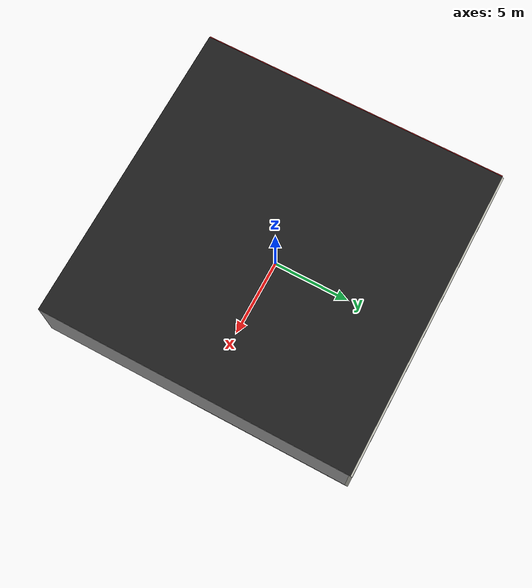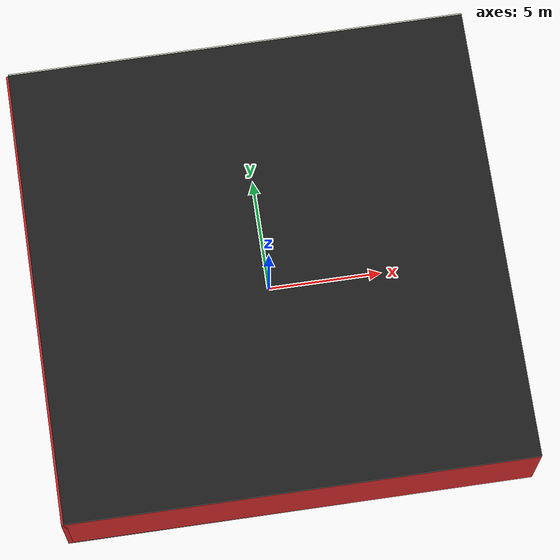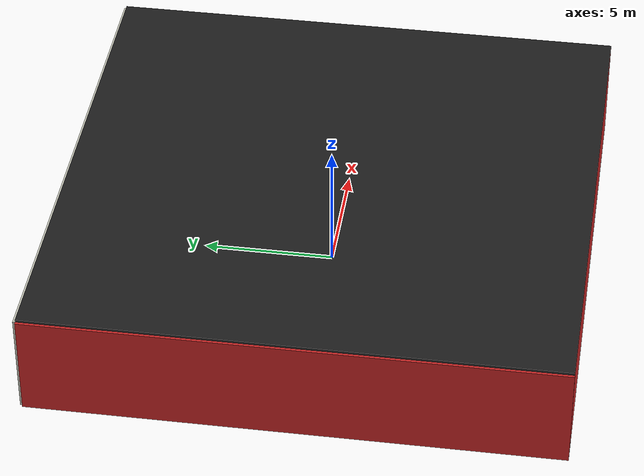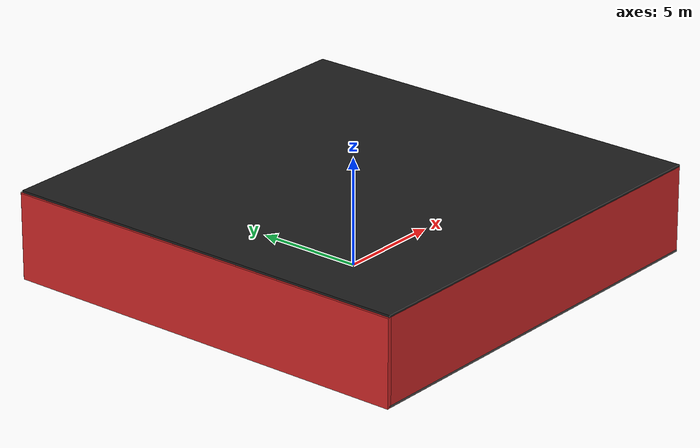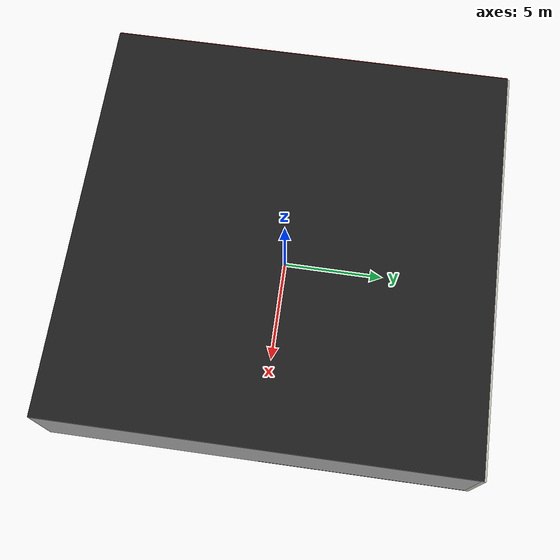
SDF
<sdf version="1.4">
 <world name="default">
  <physics type="ode">
   <max_step_size>0.001</max_step_size>
   <real_time_factor>1</real_time_factor>
   <real_time_update_rate>1000</real_time_update_rate>
   <gravity>0 0 -9.8</gravity>
  </physics>
  <scene><ambient>0.4 0.4 0.4 1</ambient><background>0.7 0.7 0.7 1</background><shadows>1</shadows></scene>
  <model name="Surrounding">
   <static>1</static>
   <link name="Ceiling">
    <collision name="Ceiling_Collision"><geometry><box><size>20 20 0.1</size></box></geometry></collision>
    <visual name="Ceiling_Visual">
     <geometry><box><size>20 20 0.1</size></box></geometry>
     <material>
      <script><uri>file://media/materials/scripts/gazebo.material</uri><name>Gazebo/Black</name></script>
     </material>
    </visual>
    <pose>0 0 4.05 0 0 0</pose>
   </link>
   <link name="Wall_South">
    <collision name="Wall_South_Collision">
     <geometry><box><size>20 0 4</size></box></geometry>
     <pose>0 0 2 0 -0 0</pose>
    </collision>
    <visual name="Wall_South_Visual">
     <pose>0 0 2 0 -0 0</pose>
     <geometry><box><size>20 0 4</size></box></geometry>
     <material>
      <script><uri>file://media/materials/scripts/gazebo.material</uri><name>Gazebo/RedBright</name></script>
     </material>
    </visual>
    <velocity_decay><linear>0</linear><angular>0</angular></velocity_decay>
    <pose>0 -10 0 0 -0 0</pose>
   </link>
   <link name="Wall_East">
    <collision name="Wall_21_Collision">
     <geometry><box><size>20 0 4</size></box></geometry>
     <pose>0 0 2 0 -0 0</pose>
    </collision>
    <visual name="Wall_21_Visual">
     <pose>0 0 2 0 -0 0</pose>
     <geometry><box><size>20 0 4</size></box></geometry>
     <material>
      <script><uri>file://media/materials/scripts/gazebo.material</uri><name>Gazebo/LightOn</name></script>
     </material>
    </visual>
    <velocity_decay><linear>0</linear><angular>0</angular></velocity_decay>
    <pose>10 0 0 0 -0 1.5708</pose>
   </link>
   <link name="Wall_North">
    <collision name="Wall_22_Collision">
     <geometry><box><size>20 0.2 4</size></box></geometry>
     <pose>0 0 2 0 -0 0</pose>
    </collision>
    <visual name="Wall_22_Visual">
     <pose>0 0 2 0 -0 0</pose>
     <geometry><box><size>20 0.2 4</size></box></geometry>
     <material>
      <script><uri>file://media/materials/scripts/gazebo.material</uri><name>Gazebo/PaintedWall</name></script>
     </material>
    </visual>
    <velocity_decay><linear>0</linear><angular>0</angular></velocity_decay>
    <pose>0 10 0 0 -0 0</pose>
   </link>
   <link name="Wall_West">
    <collision name="Wall_23_Collision">
     <geometry><box><size>20 0.2 4</size></box></geometry>
     <pose>0 0 2 0 -0 0</pose>
    </collision>
    <visual name="Wall_23_Visual">
     <pose>0 0 2 0 -0 0</pose>
     <geometry><box><size>20 0.2 4</size></box></geometry>
     <material>
      <script><uri>file://media/materials/scripts/gazebo.material</uri><name>Gazebo/Red</name></script>
     </material>
    </visual>
    <velocity_decay><linear>0</linear><angular>0</angular></velocity_decay>
    <pose>-10 0 0 0 0 -1.5708</pose>
   </link>
   <link name="Ground_link">
    <collision name="collision">
     <pose>0 0 .05 0 -0 0</pose>
     <geometry><box><size>20 20 0.1</size></box></geometry>
    </collision>
    <visual name="visual">
     <pose>0 0 .05 0 -0 0</pose>
     <geometry><box><size>20 20 0.1</size></box></geometry>
     <material>
      <script><uri>file://media/materials/scripts/gazebo.material</uri><name>Gazebo/Road</name></script>
     </material>
    </visual>
   </link>
   <static>1</static>
  </model>
  <spherical_coordinates>
   <surface_model>EARTH_WGS84</surface_model>
   <latitude_deg>0</latitude_deg>
   <longitude_deg>0</longitude_deg>
   <elevation>0</elevation>
   <heading_deg>0</heading_deg>
  </spherical_coordinates>
  <light name="lightball_0" type="diffuse">
   <diffuse>0.8 0.8 0.8 1</diffuse>
   <specular>0.2 0.2 0.2 1</specular>
   <attenuation>
    <range>100</range>
    <constant>0.7</constant>
    <linear>0.01</linear>
    <quadratic>0.001</quadratic>
   </attenuation>
   <direction>-0.5 0.1 -0.9</direction>
   <pose>-1.15409756653 1.33257918718 2.29281431822 0 0 0</pose>
  </light>
  <light name="lightball_1" type="diffuse">
   <diffuse>0.8 0.8 0.8 1</diffuse>
   <specular>0.2 0.2 0.2 1</specular>
   <attenuation>
    <range>100</range>
    <constant>0.7</constant>
    <linear>0.01</linear>
    <quadratic>0.001</quadratic>
   </attenuation>
   <direction>-0.5 0.1 -0.9</direction>
   <pose>1.64387640137 -0.578792553421 2.18130101334 0 0 0</pose>
  </light>
  <light name="lightball_2" type="diffuse">
   <diffuse>0.8 0.8 0.8 1</diffuse>
   <specular>0.2 0.2 0.2 1</specular>
   <attenuation>
    <range>100</range>
    <constant>0.7</constant>
    <linear>0.01</linear>
    <quadratic>0.001</quadratic>
   </attenuation>
   <direction>-0.5 0.1 -0.9</direction>
   <pose>3.54568174408 -3.34585588331 1.15770624007 0 0 0</pose>
  </light>
  <light name="lightball_3" type="diffuse">
   <diffuse>0.8 0.8 0.8 1</diffuse>
   <specular>0.2 0.2 0.2 1</specular>
   <attenuation>
    <range>100</range>
    <constant>0.7</constant>
    <linear>0.01</linear>
    <quadratic>0.001</quadratic>
   </attenuation>
   <direction>-0.5 0.1 -0.9</direction>
   <pose>6.84877528357 2.65977031309 2.63349429053 0 0 0</pose>
  </light>
  <light name="lightball_4" type="diffuse">
   <diffuse>0.8 0.8 0.8 1</diffuse>
   <specular>0.2 0.2 0.2 1</specular>
   <attenuation>
    <range>100</range>
    <constant>0.7</constant>
    <linear>0.01</linear>
    <quadratic>0.001</quadratic>
   </attenuation>
   <direction>-0.5 0.1 -0.9</direction>
   <pose>-0.227288917604 -5.62928057924 0.885772410443 0 0 0</pose>
  </light>
  <light name="lightball_5" type="diffuse">
   <diffuse>0.8 0.8 0.8 1</diffuse>
   <specular>0.2 0.2 0.2 1</specular>
   <attenuation>
    <range>100</range>
    <constant>0.7</constant>
    <linear>0.01</linear>
    <quadratic>0.001</quadratic>
   </attenuation>
   <direction>-0.5 0.1 -0.9</direction>
   <pose>-0.872571511108 -9.99182033461 1.38177422953 0 0 0</pose>
  </light>
  <include>
   <uri>model://textured_shapes</uri>
   <pose>-6.41809583041 1.53538611937 0 0 0 1.76560806522</pose>
  </include>
  <include><uri>model://cabinet</uri><pose>-2.04302847341 -7.14206090258 0 0 0 0.0652319764091</pose></include>
  <include><uri>model://table</uri><pose>0.347843833786 6.75558118268 0 0 0 1.17315607523</pose></include>
  <include>
   <uri>model://robocup_3Dsim_goal</uri>
   <pose>4.67666669025 4.97477638544 0 0 0 2.57593085989</pose>
  </include>
  <include><uri>model://cabinet</uri><pose>7.22788855192 -0.514548489038 0 0 0 0.725758928308</pose></include>
  <include>
   <uri>model://textured_shapes</uri>
   <pose>7.21611001493 0.970907239805 0 0 0 1.96622891133</pose>
  </include>
 </world>
</sdf>

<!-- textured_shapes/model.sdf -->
<sdf version="1.6">
  <model name="textured_shapes">
    <pose>0 0 0.5 0 0 0</pose>
    <link name="box">
      <pose>0 -1.5 0 0 0 0</pose>
      <collision name="collision">
        <geometry>
          <box>
            <size>1 1 1</size>
          </box>
        </geometry>
      </collision>
      <visual name="visual">
        <geometry>
          <box>
            <size>1 1 1</size>
          </box>
        </geometry>
        <material>
          <script>
            <uri>model://../model_source/models/textured_shapes/materials/scripts</uri>
            <uri>model://../model_source/models/textured_shapes/materials/textures</uri>
            <name>TexturedShape/Squares</name>
          </script>
        </material>
      </visual>
    </link>
    <link name="sphere">
      <collision name="collision">
        <geometry>
          <sphere>
            <radius>0.5</radius>
          </sphere>
        </geometry>
      </collision>
      <visual name="visual">
        <geometry>
          <sphere>
            <radius>0.5</radius>
          </sphere>
        </geometry>
        <material>
          <script>
            <uri>model://../model_source/models/textured_shapes/materials/scripts</uri>
            <uri>model://../model_source/models/textured_shapes/materials/textures</uri>
            <name>TexturedShape/Squares</name>
          </script>
        </material>
      </visual>
    </link>
    <link name="cylinder">
      <pose>0 1.5 0 0 0 0</pose>
      <collision name="collision">
        <geometry>
          <cylinder>
            <radius>0.5</radius>
            <length>1</length>
          </cylinder>
        </geometry>
      </collision>
      <visual name="visual">
        <geometry>
          <cylinder>
            <radius>0.5</radius>
            <length>1</length>
          </cylinder>
        </geometry>
        <material>
          <script>
            <uri>model://../model_source/models/textured_shapes/materials/scripts</uri>
            <uri>model://../model_source/models/textured_shapes/materials/textures</uri>
            <name>TexturedShape/Squares</name>
          </script>
        </material>
      </visual>
    </link>
  </model>
</sdf>

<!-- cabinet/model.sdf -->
<sdf version="1.5">
  <model name="cabinet">
    <static>true</static>
    <link name="cabinet_bottom_plate">
      <inertial>
        <pose>0 0 -1 0 0 0</pose>
        <inertia>
          <ixx>2.050000</ixx>
          <ixy>0</ixy>
          <ixz>0</ixz>
          <iyy>2.050000</iyy>
          <iyz>0</iyz>
          <izz>2.050000</izz>
        </inertia>
        <mass>25.000000</mass>
      </inertial>
      <collision name="cabinet_bottom_plate_geom">
        <pose>0 0 0.010000 0 0 0</pose>
        <geometry>
          <box>
            <size>0.450000 0.450000 0.020000</size>
          </box>
        </geometry>
      </collision>
      <visual name="cabinet_bottom_plate_geom_visual">
        <pose>0 0 0.010000 0 0 0</pose>
        <geometry>
          <box>
            <size>0.450000 0.450000 0.020000</size>
          </box>
        </geometry>
        <material>
          <script>
            <uri>model://media/materials/scripts/gazebo.material</uri>
            <name>Gazebo/Wood</name>
          </script>
        </material>
      </visual>
      <collision name="cabinet_bottom_plate_geom_cabinet_back_plate">
        <pose>0.235000 0 0.510000 0 0 0</pose>
        <geometry>
          <box>
            <size>0.020000 0.450000 1.020000</size>
          </box>
        </geometry>
      </collision>
      <visual name="cabinet_bottom_plate_geom_cabinet_back_plate_visual">
        <pose>0.235000 0 0.510000 0 0 0</pose>
        <geometry>
          <box>
            <size>0.020000 0.450000 1.020000</size>
          </box>
        </geometry>
        <material>
          <script>
            <uri>model://media/materials/scripts/gazebo.material</uri>
            <name>Gazebo/Wood</name>
          </script>
        </material>
      </visual>
      <collision name="cabinet_bottom_plate_geom_cabinet_left_plate">
        <pose>0 0.235000 0.510000 0 0 0</pose>
        <geometry>
          <box>
            <size>0.450000 0.020000 1.020000</size>
          </box>
        </geometry>
      </collision>
      <visual name="cabinet_bottom_plate_geom_cabinet_left_plate_visual">
        <pose>0 0.235000 0.510000 0 0 0</pose>
        <geometry>
          <box>
            <size>0.450000 0.020000 1.020000</size>
          </box>
        </geometry>
        <material>
          <script>
            <uri>model://media/materials/scripts/gazebo.material</uri>
            <name>Gazebo/Wood</name>
          </script>
        </material>
      </visual>
      <collision name="cabinet_bottom_plate_geom_cabinet_middle_plate">
        <pose>0 0 0.510000 0 0 0</pose>
        <geometry>
          <box>
            <size>0.450000 0.450000 0.020000</size>
          </box>
        </geometry>
      </collision>
      <visual name="cabinet_bottom_plate_geom_cabinet_middle_plate_visual">
        <pose>0 0 0.510000 0 0 0</pose>
        <geometry>
          <box>
            <size>0.450000 0.450000 0.020000</size>
          </box>
        </geometry>
        <material>
          <script>
            <uri>model://media/materials/scripts/gazebo.material</uri>
            <name>Gazebo/Wood</name>
          </script>
        </material>
      </visual>
      <collision name="cabinet_bottom_plate_geom_cabinet_right_plate">
        <pose>0 -0.235000 0.510000 0 0 0</pose>
        <geometry>
          <box>
            <size>0.450000 0.020000 1.020000</size>
          </box>
        </geometry>
      </collision>
      <visual name="cabinet_bottom_plate_geom_cabinet_right_plate_visual">
        <pose>0 -0.235000 0.510000 0 0 0</pose>
        <geometry>
          <box>
            <size>0.450000 0.020000 1.020000</size>
          </box>
        </geometry>
        <material>
          <script>
            <uri>model://media/materials/scripts/gazebo.material</uri>
            <name>Gazebo/Wood</name>
          </script>
        </material>
      </visual>
      <collision name="cabinet_bottom_plate_geom_cabinet_top_plate">
        <pose>0 0 1.010000 0 0 0</pose>
        <geometry>
          <box>
            <size>0.450000 0.450000 0.020000</size>
          </box>
        </geometry>
      </collision>
      <visual name="cabinet_bottom_plate_geom_cabinet_top_plate_visual">
        <pose>0 0 1.010000 0 0 0</pose>
        <geometry>
          <box>
            <size>0.450000 0.450000 0.020000</size>
          </box>
        </geometry>
        <material>
          <script>
            <uri>model://media/materials/scripts/gazebo.material</uri>
            <name>Gazebo/Wood</name>
          </script>
        </material>
      </visual>
    </link>
  </model>
</sdf>

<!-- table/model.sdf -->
<sdf version="1.5">
  <model name="table">
    <static>true</static>
    <link name="link">
      <collision name="surface">
        <pose>0 0 1.0 0 0 0</pose>
        <geometry>
          <box>
            <size>1.5 0.8 0.03</size>
          </box>
        </geometry>
        <surface>
          <friction>
            <ode>
              <mu>0.6</mu>
              <mu2>0.6</mu2>
            </ode>
          </friction>
        </surface>
      </collision>
      <visual name="visual1">
        <pose>0 0 1.0 0 0 0</pose>
        <geometry>
          <box>
            <size>1.5 0.8 0.03</size>
          </box>
        </geometry>
        <material>
          <script>
            <uri>model://media/materials/scripts/gazebo.material</uri>
            <name>Gazebo/Wood</name>
          </script>
        </material>
      </visual>
      <collision name="front_left_leg">
        <pose>0.68 0.38 0.5 0 0 0</pose>
        <geometry>
          <cylinder>
            <radius>0.02</radius>
            <length>1.0</length>
          </cylinder>
        </geometry>
      </collision>
      <visual name="front_left_leg">
        <pose>0.68 0.38 0.5 0 0 0</pose>
        <geometry>
          <cylinder>
            <radius>0.02</radius>
            <length>1.0</length>
          </cylinder>
        </geometry>
        <material>
          <script>
            <uri>model://media/materials/scripts/gazebo.material</uri>
            <name>Gazebo/Grey</name>
          </script>
        </material>
      </visual>
      <collision name="front_right_leg">
        <pose>0.68 -0.38 0.5 0 0 0</pose>
        <geometry>
          <cylinder>
            <radius>0.02</radius>
            <length>1.0</length>
          </cylinder>
        </geometry>
      </collision>
      <visual name="front_right_leg">
        <pose>0.68 -0.38 0.5 0 0 0</pose>
        <geometry>
          <cylinder>
            <radius>0.02</radius>
            <length>1.0</length>
          </cylinder>
        </geometry>
        <material>
          <script>
            <uri>model://media/materials/scripts/gazebo.material</uri>
            <name>Gazebo/Grey</name>
          </script>
        </material>
      </visual>
      <collision name="back_right_leg">
        <pose>-0.68 -0.38 0.5 0 0 0</pose>
        <geometry>
          <cylinder>
            <radius>0.02</radius>
            <length>1.0</length>
          </cylinder>
        </geometry>
      </collision>
      <visual name="back_right_leg">
        <pose>-0.68 -0.38 0.5 0 0 0</pose>
        <geometry>
          <cylinder>
            <radius>0.02</radius>
            <length>1.0</length>
          </cylinder>
        </geometry>
        <material>
          <script>
            <uri>model://media/materials/scripts/gazebo.material</uri>
            <name>Gazebo/Grey</name>
          </script>
        </material>
      </visual>
      <collision name="back_left_leg">
        <pose>-0.68 0.38 0.5 0 0 0</pose>
        <geometry>
          <cylinder>
            <radius>0.02</radius>
            <length>1.0</length>
          </cylinder>
        </geometry>
      </collision>
      <visual name="back_left_leg">
        <pose>-0.68 0.38 0.5 0 0 0</pose>
        <geometry>
          <cylinder>
            <radius>0.02</radius>
            <length>1.0</length>
          </cylinder>
        </geometry>
        <material>
          <script>
            <uri>model://media/materials/scripts/gazebo.material</uri>
            <name>Gazebo/Grey</name>
          </script>
        </material>
      </visual>
    </link>
  </model>
</sdf>

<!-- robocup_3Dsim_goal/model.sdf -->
<sdf version="1.5">
  <model name="robocup_3d_goal">
    <static>true</static>
    <link name="left_post">
      <pose>0 1.05 0.45 0 0 0</pose>
      <collision name="collision">
        <geometry>
          <cylinder>
            <radius>0.05</radius>
            <length>0.9</length>
          </cylinder>
        </geometry>
      </collision>
      <visual name="visual">
        <geometry>
          <cylinder>
            <radius>0.05</radius>
            <length>0.9</length>
          </cylinder>
        </geometry>
        <material>
          <script>
            <uri>file://media/materials/scripts/gazebo.material</uri>
            <name>Gazebo/ZincYellow</name>
          </script>
        </material>
      </visual>
    </link>
    <link name="left_support_horiz_lower">
      <pose>0.30 1.05 0.01 0 0 0</pose>
      <collision name="collision">
        <geometry>
          <box>
            <size>0.50 0.02 0.02</size>
          </box>
        </geometry>
      </collision>
      <visual name="visual">
        <geometry>
          <box>
            <size>0.50 0.02 0.02</size>
          </box>
        </geometry>
        <material>
          <script>
            <uri>file://media/materials/scripts/gazebo.material</uri>
            <name>Gazebo/White</name>
          </script>
        </material>
      </visual>
    </link>
    <link name="left_support_horiz_upper">
      <pose>0.30 1.05 0.79 0 0 0</pose>
      <collision name="collision">
        <geometry>
          <box>
            <size>0.50 0.02 0.02</size>
          </box>
        </geometry>
      </collision>
      <visual name="visual">
        <geometry>
          <box>
            <size>0.50 0.02 0.02</size>
          </box>
        </geometry>
        <material>
          <script>
            <uri>file://media/materials/scripts/gazebo.material</uri>
            <name>Gazebo/White</name>
          </script>
        </material>
      </visual>
    </link>
    <link name="left_support_vertical">
      <pose>0.56 1.05 0.4 0 1.5708 0</pose>
      <collision name="collision">
        <geometry>
          <box>
            <size>0.80 0.02 0.02</size>
          </box>
        </geometry>
      </collision>
      <visual name="visual">
        <geometry>
          <box>
            <size>0.80 0.02 0.02</size>
          </box>
        </geometry>
        <material>
          <script>
            <uri>file://media/materials/scripts/gazebo.material</uri>
            <name>Gazebo/White</name>
          </script>
        </material>
      </visual>
    </link>
    <link name="right_support_horiz_lower">
      <pose>0.30 -1.05 0.01 0 0 0</pose>
      <collision name="collision">
        <geometry>
          <box>
            <size>0.50 0.02 0.02</size>
          </box>
        </geometry>
      </collision>
      <visual name="visual">
        <geometry>
          <box>
            <size>0.50 0.02 0.02</size>
          </box>
        </geometry>
        <material>
          <script>
            <uri>file://media/materials/scripts/gazebo.material</uri>
            <name>Gazebo/White</name>
          </script>
        </material>
      </visual>
    </link>
    <link name="right_support_horiz_upper">
      <pose>0.30 -1.05 0.79 0 0 0</pose>
      <collision name="collision">
        <geometry>
          <box>
            <size>0.50 0.02 0.02</size>
          </box>
        </geometry>
      </collision>
      <visual name="visual">
        <geometry>
          <box>
            <size>0.50 0.02 0.02</size>
          </box>
        </geometry>
        <material>
          <script>
            <uri>file://media/materials/scripts/gazebo.material</uri>
            <name>Gazebo/White</name>
          </script>
        </material>
      </visual>
    </link>
    <link name="right_support_vertical">
      <pose>0.56 -1.05 0.4 0 1.5708 0</pose>
      <collision name="collision">
        <geometry>
          <box>
            <size>0.80 0.02 0.02</size>
          </box>
        </geometry>
      </collision>
      <visual name="visual">
        <geometry>
          <box>
            <size>0.80 0.02 0.02</size>
          </box>
        </geometry>
        <material>
          <script>
            <uri>file://media/materials/scripts/gazebo.material</uri>
            <name>Gazebo/White</name>
          </script>
        </material>
      </visual>
    </link>
    <link name="center_support_horiz_lower">
      <pose>0.56 0 0.01 0 1.5708 0</pose>
      <collision name="collision">
        <geometry>
          <box>
            <size>0.02 2.08 0.02</size>
          </box>
        </geometry>
      </collision>
      <visual name="visual">
        <geometry>
          <box>
            <size>0.02 2.08 0.02</size>
          </box>
        </geometry>
        <material>
          <script>
            <uri>file://media/materials/scripts/gazebo.material</uri>
            <name>Gazebo/White</name>
          </script>
        </material>
      </visual>
    </link>
    <link name="center_support_horiz_upper">
      <pose>0.56 0 0.79 0 1.5708 0</pose>
      <collision name="collision">
        <geometry>
          <box>
            <size>0.02 2.08 0.02</size>
          </box>
        </geometry>
      </collision>
      <visual name="visual">
        <geometry>
          <box>
            <size>0.02 2.08 0.02</size>
          </box>
        </geometry>
        <material>
          <script>
            <uri>file://media/materials/scripts/gazebo.material</uri>
            <name>Gazebo/White</name>
          </script>
        </material>
      </visual>
    </link>
    <link name="right_post">
      <pose>0 -1.05 0.45 0 0 0</pose>
      <collision name="collision">
        <geometry>
          <cylinder>
            <radius>0.05</radius>
            <length>0.9</length>
          </cylinder>
        </geometry>
      </collision>
      <visual name="visual">
        <geometry>
          <cylinder>
            <radius>0.05</radius>
            <length>0.9</length>
          </cylinder>
        </geometry>
        <material>
          <script>
            <uri>file://media/materials/scripts/gazebo.material</uri>
            <name>Gazebo/ZincYellow</name>
          </script>
        </material>
      </visual>
    </link>
    <link name="crossbar">
      <pose>0 0 0.85 1.57 1.57 0</pose>
      <collision name="collision">
        <geometry>
          <cylinder>
            <radius>0.05</radius>
            <length>2.0</length>
          </cylinder>
        </geometry>
      </collision>
      <visual name="visual">
        <geometry>
          <cylinder>
            <radius>0.05</radius>
            <length>2.0</length>
          </cylinder>
        </geometry>
        <material>
          <script>
            <uri>file://media/materials/scripts/gazebo.material</uri>
            <name>Gazebo/ZincYellow</name>
          </script>
        </material>
      </visual>
    </link>
    <link name="center_net">
      <pose>0.56 0 0.40 0 0 0</pose>
      <collision name="collision">
        <geometry>
          <box>
            <size>0.01 2.1 0.80</size>
          </box>
        </geometry>
      </collision>
      <visual name="visual">
        <geometry>
          <box>
            <size>0.01 2.1 0.80</size>
          </box>
        </geometry>
        <material>
          <script>
            <uri>model://../model_source/models/robocup09_spl_field/materials/scripts/</uri>
            <uri>model://../model_source/models/robocup09_spl_field/materials/textures/</uri>
            <name>RoboCup/Net</name>
          </script>
        </material>
      </visual>
    </link>
    <link name="left_net">
      <pose>0.30 1.05 0.40 0 0 0</pose>
      <collision name="collision">
        <geometry>
          <box>
            <size>0.50 0.01 0.76</size>
          </box>
        </geometry>
      </collision>
      <visual name="visual">
        <geometry>
          <box>
            <size>0.50 0.01 0.76</size>
          </box>
        </geometry>
        <material>
          <script>
            <uri>model://../model_source/models/robocup09_spl_field/materials/scripts/</uri>
            <uri>model://../model_source/models/robocup09_spl_field/materials/textures/</uri>
            <name>RoboCup/Net</name>
          </script>
        </material>
      </visual>
    </link>
    <link name="right_net">
      <pose>0.30 -1.05 0.40 0 0 0</pose>
      <collision name="collision">
        <geometry>
          <box>
            <size>0.50 0.01 0.76</size>
          </box>
        </geometry>
      </collision>
      <visual name="visual">
        <geometry>
          <box>
            <size>0.50 0.01 0.76</size>
          </box>
        </geometry>
        <material>
          <script>
            <uri>model://../model_source/models/robocup09_spl_field/materials/scripts/</uri>
            <uri>model://../model_source/models/robocup09_spl_field/materials/textures/</uri>
            <name>RoboCup/Net</name>
          </script>
        </material>
      </visual>
    </link>
  </model>
</sdf>
